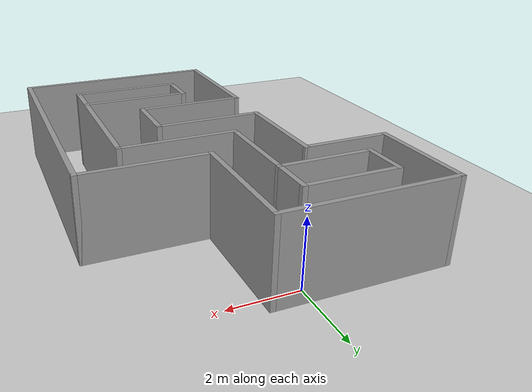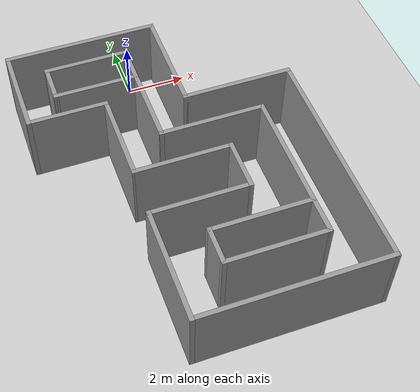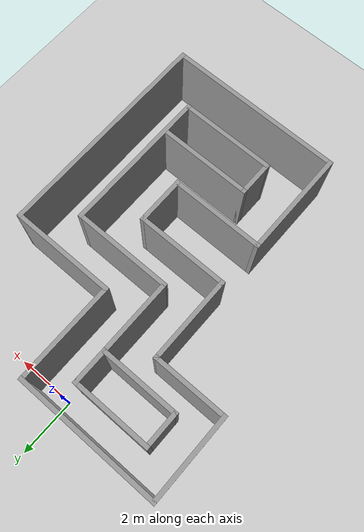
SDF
<sdf version="1.7">
 <world name="default">
  <light name="sun" type="directional">
   <pose>0 0 10 0 -0 0</pose>
   <diffuse>0.8 0.8 0.8 1</diffuse>
   <specular>0.2 0.2 0.2 1</specular>
   <attenuation>
    <range>1000</range>
    <constant>0.9</constant>
    <linear>0.01</linear>
    <quadratic>0.001</quadratic>
   </attenuation>
   <direction>-0.5 0.1 -0.9</direction>
   <spot><inner_angle>0</inner_angle><outer_angle>0</outer_angle><falloff>0</falloff></spot>
  </light>
  <model name="ground_plane">
   <static>1</static>
   <link name="link">
    <collision name="collision">
     <geometry><plane><normal>0 0 1</normal><size>100 100</size></plane></geometry>
     <surface>
      <contact><collide_bitmask>65535</collide_bitmask></contact>
      <friction><ode><mu>100</mu><mu2>50</mu2></ode></friction>
     </surface>
    </collision>
    <visual name="visual">
     <cast_shadows>0</cast_shadows>
     <geometry><plane><normal>0 0 1</normal><size>100 100</size></plane></geometry>
     <material>
      <script><uri>file://media/materials/scripts/gazebo.material</uri><name>Gazebo/Grey</name></script>
     </material>
    </visual>
   </link>
  </model>
  <gravity>0 0 -9.8</gravity>
  <magnetic_field>6e-06 2.3e-05 -4.2e-05</magnetic_field>
  <atmosphere type="adiabatic"/>
  <physics type="ode">
   <max_step_size>0.001</max_step_size>
   <real_time_factor>1</real_time_factor>
   <real_time_update_rate>1000</real_time_update_rate>
  </physics>
  <scene><ambient>0.4 0.4 0.4 1</ambient><background>0.7 0.7 0.7 1</background><shadows>1</shadows></scene>
  <spherical_coordinates>
   <surface_model>EARTH_WGS84</surface_model>
   <latitude_deg>0</latitude_deg>
   <longitude_deg>0</longitude_deg>
   <elevation>0</elevation>
   <heading_deg>0</heading_deg>
  </spherical_coordinates>
  <model name="maze2">
   <pose>0.303483 -5.16037 0 0 -0 0</pose>
   <link name="Wall_0">
    <collision name="Wall_0_Collision">
     <geometry><box><size>5.111 0.15 2.5</size></box></geometry>
     <pose>0 0 1.25 0 -0 0</pose>
    </collision>
    <visual name="Wall_0_Visual">
     <pose>0 0 1.25 0 -0 0</pose>
     <geometry><box><size>5.111 0.15 2.5</size></box></geometry>
     <material>
      <script><uri>file://media/materials/scripts/gazebo.material</uri><name>Gazebo/Grey</name></script>
      <ambient>1 1 1 1</ambient>
     </material>
     <meta><layer>0</layer></meta>
    </visual>
    <pose>-1.77398 5.53937 0 0 -0 3.14159</pose>
   </link>
   <link name="Wall_1">
    <collision name="Wall_1_Collision">
     <geometry><box><size>3.08455 0.15 2.5</size></box></geometry>
     <pose>0 0 1.25 0 -0 0</pose>
    </collision>
    <visual name="Wall_1_Visual">
     <pose>0 0 1.25 0 -0 0</pose>
     <geometry><box><size>3.08455 0.15 2.5</size></box></geometry>
     <material>
      <script><uri>file://media/materials/scripts/gazebo.material</uri><name>Gazebo/Grey</name></script>
      <ambient>1 1 1 1</ambient>
     </material>
     <meta><layer>0</layer></meta>
    </visual>
    <pose>-4.25448 4.07237 0 0 -0 -1.5708</pose>
   </link>
   <link name="Wall_10">
    <collision name="Wall_10_Collision">
     <geometry><box><size>2.81419 0.15 2.5</size></box></geometry>
     <pose>0 0 1.25 0 -0 0</pose>
    </collision>
    <visual name="Wall_10_Visual">
     <pose>0 0 1.25 0 -0 0</pose>
     <geometry><box><size>2.81419 0.15 2.5</size></box></geometry>
     <material>
      <script><uri>file://media/materials/scripts/gazebo.material</uri><name>Gazebo/Grey</name></script>
      <ambient>1 1 1 1</ambient>
     </material>
     <meta><layer>0</layer></meta>
    </visual>
    <pose>-1.83948 3.43137 0 0 -0 0</pose>
   </link>
   <link name="Wall_11">
    <collision name="Wall_11_Collision">
     <geometry><box><size>1.32539 0.15 2.5</size></box></geometry>
     <pose>0 0 1.25 0 -0 0</pose>
    </collision>
    <visual name="Wall_11_Visual">
     <pose>0 0 1.25 0 -0 0</pose>
     <geometry><box><size>1.32539 0.15 2.5</size></box></geometry>
     <material>
      <script><uri>file://media/materials/scripts/gazebo.material</uri><name>Gazebo/Grey</name></script>
      <ambient>1 1 1 1</ambient>
     </material>
     <meta><layer>0</layer></meta>
    </visual>
    <pose>-0.507483 4.01887 0 0 -0 1.5708</pose>
   </link>
   <link name="Wall_12">
    <collision name="Wall_12_Collision">
     <geometry><box><size>2.81401 0.15 2.5</size></box></geometry>
     <pose>0 0 1.25 0 -0 0</pose>
    </collision>
    <visual name="Wall_12_Visual">
     <pose>0 0 1.25 0 -0 0</pose>
     <geometry><box><size>2.81401 0.15 2.5</size></box></geometry>
     <material>
      <script><uri>file://media/materials/scripts/gazebo.material</uri><name>Gazebo/Grey</name></script>
      <ambient>1 1 1 1</ambient>
     </material>
     <meta><layer>0</layer></meta>
    </visual>
    <pose>-1.83948 4.60637 0 0 -0 3.14159</pose>
   </link>
   <link name="Wall_14">
    <collision name="Wall_14_Collision">
     <geometry><box><size>2.74136 0.15 2.5</size></box></geometry>
     <pose>0 0 1.25 0 -0 0</pose>
    </collision>
    <visual name="Wall_14_Visual">
     <pose>0 0 1.25 0 -0 0</pose>
     <geometry><box><size>2.74136 0.15 2.5</size></box></geometry>
     <material>
      <script><uri>file://media/materials/scripts/gazebo.material</uri><name>Gazebo/Grey</name></script>
      <ambient>1 1 1 1</ambient>
     </material>
     <meta><layer>0</layer></meta>
    </visual>
    <pose>-0.505483 2.13587 0 0 -0 -1.56925</pose>
   </link>
   <link name="Wall_15">
    <collision name="Wall_15_Collision">
     <geometry><box><size>3.5 0.15 2.5</size></box></geometry>
     <pose>0 0 1.25 0 -0 0</pose>
    </collision>
    <visual name="Wall_15_Visual">
     <pose>0 0 1.25 0 -0 0</pose>
     <geometry><box><size>3.5 0.15 2.5</size></box></geometry>
     <material>
      <script><uri>file://media/materials/scripts/gazebo.material</uri><name>Gazebo/Grey</name></script>
      <ambient>1 1 1 1</ambient>
     </material>
     <meta><layer>0</layer></meta>
    </visual>
    <pose>1.17152 0.840368 0 0 -0 0</pose>
   </link>
   <link name="Wall_16">
    <collision name="Wall_16_Collision">
     <geometry><box><size>5.16503 0.15 2.5</size></box></geometry>
     <pose>0 0 1.25 0 -0 0</pose>
    </collision>
    <visual name="Wall_16_Visual">
     <pose>0 0 1.25 0 -0 0</pose>
     <geometry><box><size>5.16503 0.15 2.5</size></box></geometry>
     <material>
      <script><uri>file://media/materials/scripts/gazebo.material</uri><name>Gazebo/Grey</name></script>
      <ambient>1 1 1 1</ambient>
     </material>
     <meta><layer>0</layer></meta>
    </visual>
    <pose>2.84652 -1.66713 0 0 -0 -1.5708</pose>
   </link>
   <link name="Wall_17">
    <collision name="Wall_17_Collision">
     <geometry><box><size>3.37041 0.15 2.5</size></box></geometry>
     <pose>0 0 1.25 0 -0 0</pose>
    </collision>
    <visual name="Wall_17_Visual">
     <pose>0 0 1.25 0 -0 0</pose>
     <geometry><box><size>3.37041 0.15 2.5</size></box></geometry>
     <material>
      <script><uri>file://media/materials/scripts/gazebo.material</uri><name>Gazebo/Grey</name></script>
      <ambient>1 1 1 1</ambient>
     </material>
     <meta><layer>0</layer></meta>
    </visual>
    <pose>1.23652 -4.17463 0 0 -0 3.14159</pose>
   </link>
   <link name="Wall_19">
    <collision name="Wall_19_Collision">
     <geometry><box><size>3.076 0.15 2.5</size></box></geometry>
     <pose>0 0 1.25 0 -0 0</pose>
    </collision>
    <visual name="Wall_19_Visual">
     <pose>0 0 1.25 0 -0 0</pose>
     <geometry><box><size>3.076 0.15 2.5</size></box></geometry>
     <material>
      <script><uri>file://media/materials/scripts/gazebo.material</uri><name>Gazebo/Grey</name></script>
      <ambient>1 1 1 1</ambient>
     </material>
     <meta><layer>0</layer></meta>
    </visual>
    <pose>-1.74958 1.14237 0 0 -0 -1.56949</pose>
   </link>
   <link name="Wall_2">
    <collision name="Wall_2_Collision">
     <geometry><box><size>2.65307 0.15 2.5</size></box></geometry>
     <pose>0 0 1.25 0 -0 0</pose>
    </collision>
    <visual name="Wall_2_Visual">
     <pose>0 0 1.25 0 -0 0</pose>
     <geometry><box><size>2.65307 0.15 2.5</size></box></geometry>
     <material>
      <script><uri>file://media/materials/scripts/gazebo.material</uri><name>Gazebo/Grey</name></script>
      <ambient>1 1 1 1</ambient>
     </material>
     <meta><layer>0</layer></meta>
    </visual>
    <pose>-3.00298 2.60537 0 0 -0 0</pose>
   </link>
   <link name="Wall_22">
    <collision name="Wall_22_Collision">
     <geometry><box><size>3.30695 0.15 2.5</size></box></geometry>
     <pose>0 0 1.25 0 -0 0</pose>
    </collision>
    <visual name="Wall_22_Visual">
     <pose>0 0 1.25 0 -0 0</pose>
     <geometry><box><size>3.30695 0.15 2.5</size></box></geometry>
     <material>
      <script><uri>file://media/materials/scripts/gazebo.material</uri><name>Gazebo/Grey</name></script>
      <ambient>1 1 1 1</ambient>
     </material>
     <meta><layer>0</layer></meta>
    </visual>
    <pose>-0.225983 -1.91163 0 0 -0 3.14159</pose>
   </link>
   <link name="Wall_23">
    <collision name="Wall_23_Collision">
     <geometry><box><size>3.77802 0.15 2.5</size></box></geometry>
     <pose>0 0 1.25 0 -0 0</pose>
    </collision>
    <visual name="Wall_23_Visual">
     <pose>0 0 1.25 0 -0 0</pose>
     <geometry><box><size>3.77802 0.15 2.5</size></box></geometry>
     <material>
      <script><uri>file://media/materials/scripts/gazebo.material</uri><name>Gazebo/Grey</name></script>
      <ambient>1 1 1 1</ambient>
     </material>
     <meta><layer>0</layer></meta>
    </visual>
    <pose>-1.80448 -3.72563 0 0 -0 -1.5708</pose>
   </link>
   <link name="Wall_24">
    <collision name="Wall_24_Collision">
     <geometry><box><size>6.209 0.15 2.5</size></box></geometry>
     <pose>0 0 1.25 0 -0 0</pose>
    </collision>
    <visual name="Wall_24_Visual">
     <pose>0 0 1.25 0 -0 0</pose>
     <geometry><box><size>6.209 0.15 2.5</size></box></geometry>
     <material>
      <script><uri>file://media/materials/scripts/gazebo.material</uri><name>Gazebo/Grey</name></script>
      <ambient>1 1 1 1</ambient>
     </material>
     <meta><layer>0</layer></meta>
    </visual>
    <pose>1.22502 -5.53963 0 0 -0 0</pose>
   </link>
   <link name="Wall_25">
    <collision name="Wall_25_Collision">
     <geometry><box><size>7.742 0.15 2.5</size></box></geometry>
     <pose>0 0 1.25 0 -0 0</pose>
    </collision>
    <visual name="Wall_25_Visual">
     <pose>0 0 1.25 0 -0 0</pose>
     <geometry><box><size>7.742 0.15 2.5</size></box></geometry>
     <material>
      <script><uri>file://media/materials/scripts/gazebo.material</uri><name>Gazebo/Grey</name></script>
      <ambient>1 1 1 1</ambient>
     </material>
     <meta><layer>0</layer></meta>
    </visual>
    <pose>4.25452 -1.74363 0 0 -0 1.5708</pose>
   </link>
   <link name="Wall_27">
    <collision name="Wall_27_Collision">
     <geometry><box><size>1.292 0.15 2.5</size></box></geometry>
     <pose>0 0 1.25 0 -0 0</pose>
    </collision>
    <visual name="Wall_27_Visual">
     <pose>0 0 1.25 0 -0 0</pose>
     <geometry><box><size>1.292 0.15 2.5</size></box></geometry>
     <material>
      <script><uri>file://media/materials/scripts/gazebo.material</uri><name>Gazebo/Grey</name></script>
      <ambient>1 1 1 1</ambient>
     </material>
     <meta><layer>0</layer></meta>
    </visual>
    <pose>-0.373483 -3.60363 0 0 -0 1.5708</pose>
   </link>
   <link name="Wall_28">
    <collision name="Wall_28_Collision">
     <geometry><box><size>3.35732 0.15 2.5</size></box></geometry>
     <pose>0 0 1.25 0 -0 0</pose>
    </collision>
    <visual name="Wall_28_Visual">
     <pose>0 0 1.25 0 -0 0</pose>
     <geometry><box><size>3.35732 0.15 2.5</size></box></geometry>
     <material>
      <script><uri>file://media/materials/scripts/gazebo.material</uri><name>Gazebo/Grey</name></script>
      <ambient>1 1 1 1</ambient>
     </material>
     <meta><layer>0</layer></meta>
    </visual>
    <pose>1.23002 -3.03263 0 0 -0 0</pose>
   </link>
   <link name="Wall_30">
    <collision name="Wall_30_Collision">
     <geometry><box><size>3.25 0.15 2.5</size></box></geometry>
     <pose>0 0 1.25 0 -0 0</pose>
    </collision>
    <visual name="Wall_30_Visual">
     <pose>0 0 1.25 0 -0 0</pose>
     <geometry><box><size>3.25 0.15 2.5</size></box></geometry>
     <material>
      <script><uri>file://media/materials/scripts/gazebo.material</uri><name>Gazebo/Grey</name></script>
      <ambient>1 1 1 1</ambient>
     </material>
     <meta><layer>0</layer></meta>
    </visual>
    <pose>-0.197577 -0.320631 0 0 -0 0</pose>
   </link>
   <link name="Wall_31">
    <collision name="Wall_31_Collision">
     <geometry><box><size>1.74168 0.15 2.5</size></box></geometry>
     <pose>0 0 1.25 0 -0 0</pose>
    </collision>
    <visual name="Wall_31_Visual">
     <pose>0 0 1.25 0 -0 0</pose>
     <geometry><box><size>1.74168 0.15 2.5</size></box></geometry>
     <material>
      <script><uri>file://media/materials/scripts/gazebo.material</uri><name>Gazebo/Grey</name></script>
      <ambient>1 1 1 1</ambient>
     </material>
     <meta><layer>0</layer></meta>
    </visual>
    <pose>1.35252 -1.11613 0 0 -0 -1.5708</pose>
   </link>
   <link name="Wall_6">
    <collision name="Wall_6_Collision">
     <geometry><box><size>3.637 0.15 2.5</size></box></geometry>
     <pose>0 0 1.25 0 -0 0</pose>
    </collision>
    <visual name="Wall_6_Visual">
     <pose>0 0 1.25 0 -0 0</pose>
     <geometry><box><size>3.637 0.15 2.5</size></box></geometry>
     <material>
      <script><uri>file://media/materials/scripts/gazebo.material</uri><name>Gazebo/Grey</name></script>
      <ambient>1 1 1 1</ambient>
     </material>
     <meta><layer>0</layer></meta>
    </visual>
    <pose>0.706517 3.79587 0 0 -0 -1.5708</pose>
   </link>
   <link name="Wall_7">
    <collision name="Wall_7_Collision">
     <geometry><box><size>3.698 0.15 2.5</size></box></geometry>
     <pose>0 0 1.25 0 -0 0</pose>
    </collision>
    <visual name="Wall_7_Visual">
     <pose>0 0 1.25 0 -0 0</pose>
     <geometry><box><size>3.698 0.15 2.5</size></box></geometry>
     <material>
      <script><uri>file://media/materials/scripts/gazebo.material</uri><name>Gazebo/Grey</name></script>
      <ambient>1 1 1 1</ambient>
     </material>
     <meta><layer>0</layer></meta>
    </visual>
    <pose>2.48052 2.05237 0 0 -0 0</pose>
   </link>
   <link name="Wall_9">
    <collision name="Wall_9_Collision">
     <geometry><box><size>1.325 0.15 2.5</size></box></geometry>
     <pose>0 0 1.25 0 -0 0</pose>
    </collision>
    <visual name="Wall_9_Visual">
     <pose>0 0 1.25 0 -0 0</pose>
     <geometry><box><size>1.325 0.15 2.5</size></box></geometry>
     <material>
      <script><uri>file://media/materials/scripts/gazebo.material</uri><name>Gazebo/Grey</name></script>
      <ambient>1 1 1 1</ambient>
     </material>
     <meta><layer>0</layer></meta>
    </visual>
    <pose>-3.17148 4.01887 0 0 -0 -1.5708</pose>
   </link>
   <static>1</static>
  </model>
 </world>
</sdf>
